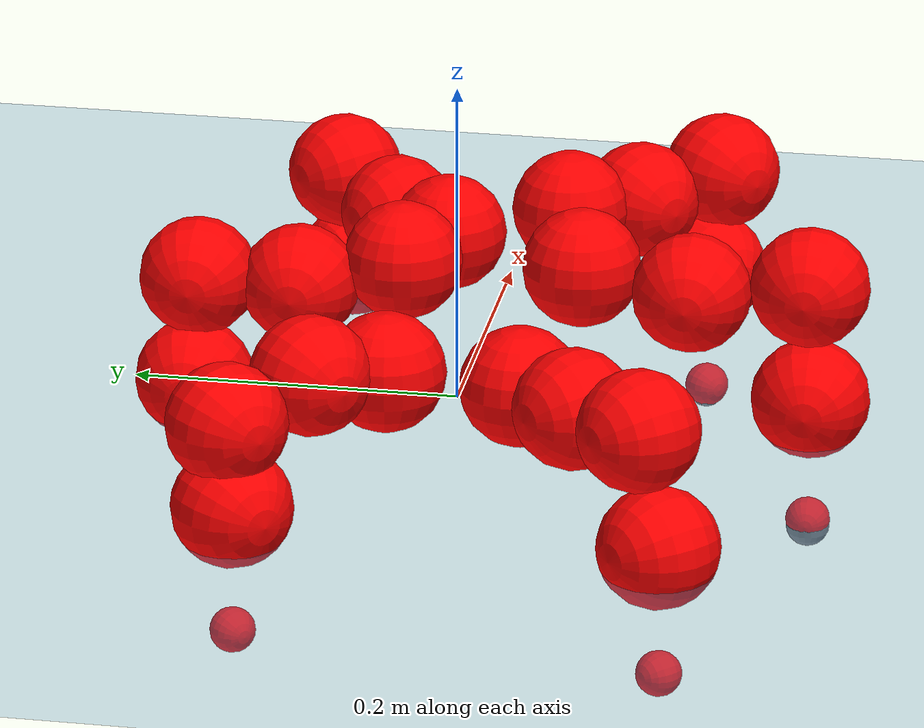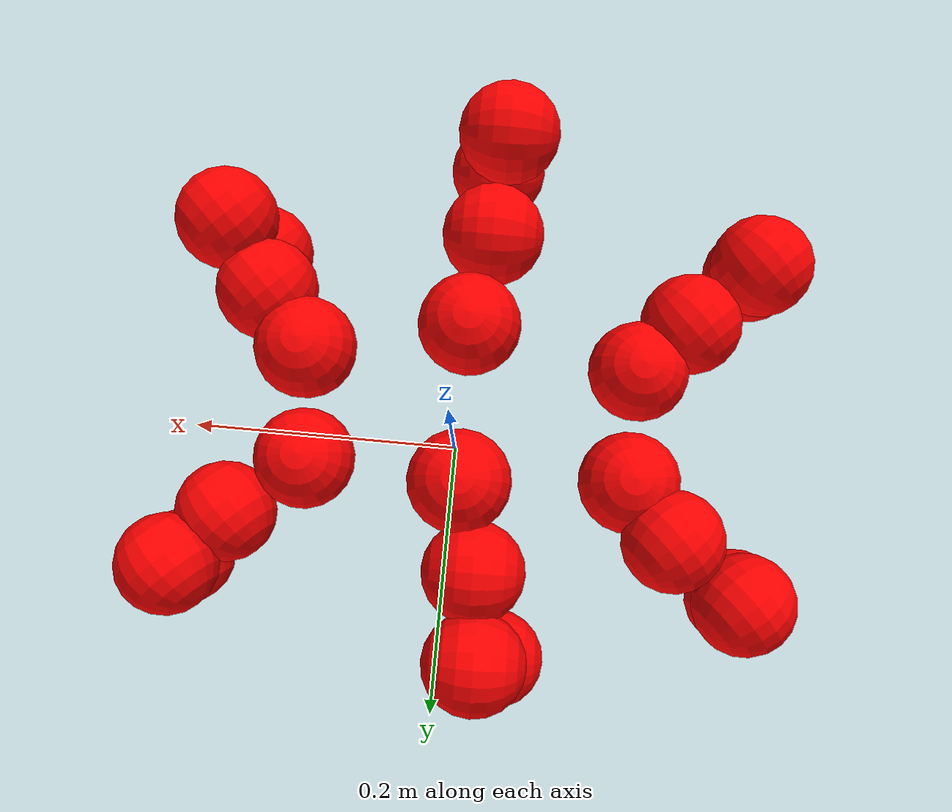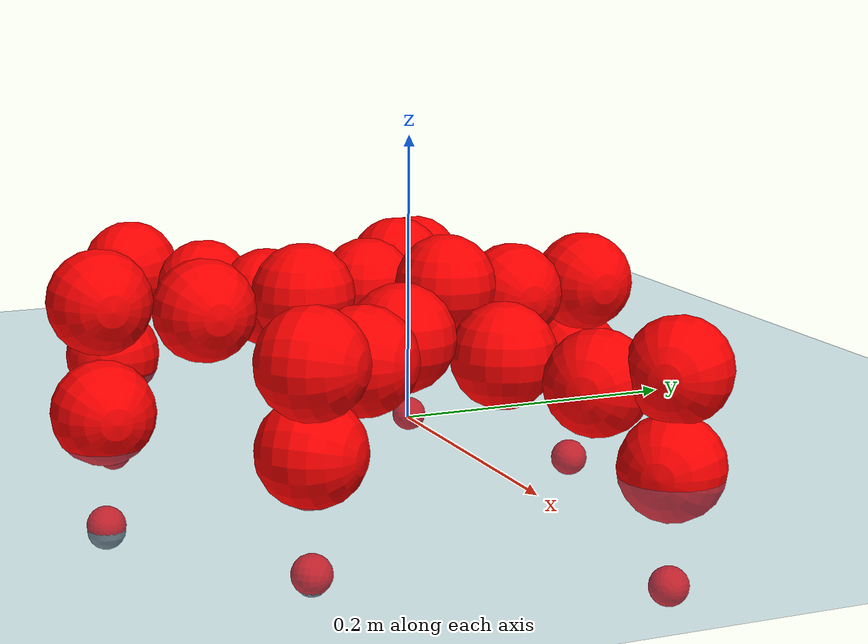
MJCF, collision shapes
<mujoco model="Golem">
  <compiler angle="radian" assetdir="assets" balanceinertia="true" inertiafromgeom="false"/>

  <option timestep="0.005" density="1.2" viscosity="2e-05"/>

  <size nkey="1"/>

  <visual>
    <quality shadowsize="8192"/>
    <map shadowclip="0.5"/>
  </visual>

  <default>
    <default class="/">
      <joint armature="0.01" damping="0.01" frictionloss="0.01"/>
      <geom contype="0" conaffinity="0" group="1" solref="-1000 -80"/>
      <site size="0.01 0.005 0.005" group="5"/>
      <general forcelimited="true" biastype="affine" gainprm="25" biasprm="0 -25 -0.5"/>
      <default class="visual">
        <geom type="mesh" group="2"/>
      </default>
      <default class="collision">
        <geom group="3"/>
      </default>
      <default class="foot">
        <geom size="0.01 0 0" condim="6" group="4" priority="1" solimp="0.015 1 0.01"/>
      </default>
      <default class="reward_collision_sphere">
        <geom group="5" rgba="1 0 0 1"/>
      </default>
    </default>
  </default>

  <asset>
    <texture type="skybox" colorspace="auto" name="//unnamed_texture_0" builtin="gradient" rgb1="0.95 0.95 0.95" rgb2="0.95 0.95 0.95" width="100" height="600"/>
    <texture type="2d" colorspace="auto" name="texplane" builtin="checker" rgb1="0.345 0.575 0.748" rgb2="0.345 0.575 0.748" markrgb="1 1 1" width="512" height="512"/>
    <material name="MatPlane" class="/" texture="texplane" texuniform="true" texrepeat="2 2" specular="0.9"/>
    <mesh name="body" class="/" file="body.stl" scale="0.001 0.001 0.001"/>
    <mesh name="coxa" class="/" file="coxa.stl" scale="0.001 0.001 0.001"/>
    <mesh name="femur" class="/" file="femur.stl" scale="0.001 0.001 0.001"/>
    <mesh name="tibia" class="/" file="tibia.stl" scale="0.001 0.001 0.001"/>
    <mesh name="tarsus" class="/" file="tarsus.stl" scale="0.001 0.001 0.001"/>
  </asset>

  <worldbody>
    <geom name="floor" class="/" size="100 100 0.125" type="plane" group="0" material="MatPlane"/>
    <light name="toplight_shadow" class="/" pos="0 0 5" dir="0.0990148 0.0990148 -0.990148" type="directional" ambient="0.04 0.04 0.04" diffuse="0.55 0.55 0.55" specular="0.12 0.12 0.12"/>
    <light name="toplight_fill" class="/" pos="0 0 5" dir="0.0990148 0.0990148 -0.990148" type="directional" castshadow="false" ambient="0.04 0.04 0.04" diffuse="0.3 0.3 0.3" specular="0.08 0.08 0.08"/>
    <body name="trunk" pos="-0.00775823 -0.0143924 -0.0102616" quat="1 -0.000578186 0.000111513 0.000171975">
      <inertial pos="0.0087094 -0.000836313 0.0159781" quat="0.999899 -0.00833223 0.00947036 0.00647144" mass="1.87636" diaginertia="0.00204608 0.000495909 0.0509976"/>
      <joint name="//unnamed_joint_0" type="free"/>
      <geom name="//unnamed_geom_1" class="/" pos="0 0 0.0886604" quat="1 0 0 0" type="mesh" rgba="0.9 0.9 0.9 1" mesh="body"/>
      <site name="imu" class="/" pos="0.113387 0.0544883 0.155515" size="0.00897767"/>
      <camera name="track" class="/" pos="0 -1.14224 0" quat="0.707107 0.707107 0 0" mode="trackcom"/>
      <camera name="ego_camera" class="/" pos="0.0957919 0 0.138532" quat="-0.5 -0.5 0.5 0.5"/>
      <body name="coxa_RR" pos="-0.135013 -0.060612 0.0776922" quat="0.381439 -0.00653132 -0.00146053 -0.92437">
        <inertial pos="0.00134349 0.0157127 -0.0152523" quat="0.998897 0.0390978 0.0249029 -0.00754563" mass="0.123151" diaginertia="0.00222279 0.000674705 0.0511925"/>
        <joint name="coxa_joint_RR" class="/" pos="0 0 0" axis="0.0077279 -0.00936563 -0.999926" range="-3.38354 3.15481" armature="0.00833487" damping="0.0111093" frictionloss="0.0108317"/>
        <geom name="//unnamed_geom_2" class="/" type="mesh" rgba="0.2 0.2 0.2 1" mesh="coxa"/>
        <geom name="//unnamed_geom_3" class="reward_collision_sphere" size="0.0359107" pos="-0.0221058 0 0"/>
        <body name="femur_RR" pos="0.0282123 0.00191653 0.00265265" quat="0.502143 -0.504023 0.494967 0.498819">
          <inertial pos="0.0123138 -0.000535005 0.00556268" quat="0.999992 0.00261357 0.00137845 0.0025501" mass="0.138452" diaginertia="0.00207159 0.000571477 0.0482438"/>
          <joint name="femur_joint_RR" class="/" pos="0 0 0" axis="-0.000904414 0.00903463 -0.999959" range="-2.91896 2.93911" armature="0.0147438" damping="0.0108879" frictionloss="0.00858451"/>
          <geom name="//unnamed_geom_4" class="/" type="mesh" rgba="0.9 0.9 0.9 1" mesh="femur"/>
          <geom name="//unnamed_geom_5" class="reward_collision_sphere" size="0.0359107"/>
          <body name="tibia_RR" pos="-0.00797841 -0.0636143 -0.00108907" quat="2.76342e-05 1 0.000104318 -9.95047e-05">
            <inertial pos="-0.00931426 -0.000462262 -0.00544525" quat="0.998813 -0.0320215 0.0188191 -0.0315156" mass="0.147288" diaginertia="0.00194372 0.000451813 0.0358538"/>
            <joint name="tibia_joint_RR" class="/" pos="0 0 0" axis="-0.00142746 0.0589729 0.998259" stiffness="0.042375" range="-2.96122 3.47817" armature="0.0113392" damping="0" frictionloss="0.00704869"/>
            <geom name="//unnamed_geom_6" class="/" type="mesh" rgba="0.2 0.2 0.2 1" mesh="tibia"/>
            <geom name="//unnamed_geom_7" class="reward_collision_sphere" size="0.0359107"/>
            <body name="tarsus_RR" pos="0.0680151 0.0143259 -0.00287418" quat="0.999999 -1.82106e-05 0.000400207 -0.00165376">
              <inertial pos="0.0316595 -0.0168758 0.0132863" quat="0.526545 0.500189 0.506775 0.464478" mass="0.124162" diaginertia="0.00199904 0.000414541 0.0419375"/>
              <joint name="tarsus_joint_RR" class="/" pos="0 0 0" axis="0.0430866 0.0213812 0.998843" stiffness="0.0202161" range="-3.4503 3.13535" armature="0.0057051" damping="0.0529549" frictionloss="0.00476205"/>
              <geom name="//unnamed_geom_8" class="/" type="mesh" rgba="0.9 0.9 0.9 1" mesh="tarsus"/>
              <geom name="foot_1" class="foot" size="0.00625751" pos="0.0825284 0 0" quat="0 -0.707107 0 0.707107"/>
              <geom name="//unnamed_geom_10" class="reward_collision_sphere" size="0.0359107"/>
              <geom name="//unnamed_geom_11" class="reward_collision_sphere" size="0.0134665" pos="0.0792126 0 0"/>
              <site name="foot_1" class="foot" pos="0.0825284 0 0" quat="0 -0.707107 0 0.707107" size="0.00897767"/>
            </body>
          </body>
        </body>
      </body>
      <body name="coxa_RM" pos="0.0028069 -0.0844331 0.103273" quat="0.707119 7.43854e-05 -1.90375e-05 -0.707094">
        <inertial pos="0.00387354 -0.00881207 -0.00670731" quat="0.999966 0.00601296 -0.000803395 0.0055894" mass="0.152195" diaginertia="0.0020089 0.000574996 0.0474077"/>
        <joint name="coxa_joint_RM" class="/" pos="0 0 0" axis="-0.0391721 -0.0130169 -0.999148" stiffness="0.0743971" range="-3.0335 3.2657" armature="0.00868646" damping="0.0238607" frictionloss="0.0163852"/>
        <geom name="//unnamed_geom_12" class="/" type="mesh" rgba="0.2 0.2 0.2 1" mesh="coxa"/>
        <geom name="//unnamed_geom_13" class="reward_collision_sphere" size="0.0359107" pos="-0.0221058 0 0"/>
        <body name="femur_RM" pos="0.0454475 -0.010678 -0.00725487" quat="0.501193 -0.498445 0.501025 0.499332">
          <inertial pos="-7.40864e-05 0.00974085 -0.0123056" quat="0.999595 0.028013 -0.00486893 0.00141385" mass="0.156046" diaginertia="0.00267292 0.000688556 0.0532201"/>
          <joint name="femur_joint_RM" class="/" pos="0 0 0" axis="0.0117092 -0.025725 -0.9996" range="-3.25646 3.32744" armature="0.0106873" damping="0.0652629" frictionloss="0.00979748"/>
          <geom name="//unnamed_geom_14" class="/" type="mesh" rgba="0.9 0.9 0.9 1" mesh="femur"/>
          <geom name="//unnamed_geom_15" class="reward_collision_sphere" size="0.0359107"/>
          <body name="tibia_RM" pos="-0.0106501 -0.0715214 -0.00477996" quat="-0.000321971 1 -0.000234943 5.21863e-05">
            <inertial pos="0.0157178 0.0147636 -0.00722712" quat="0.996829 -0.0426539 -0.0486354 -0.0463323" mass="0.142675" diaginertia="0.00221116 0.000607484 0.0607323"/>
            <joint name="tibia_joint_RM" class="/" pos="0 0 0" axis="-0.00115754 0.00337791 0.999994" range="-3.1839 2.96036" armature="0.00432665" damping="0" frictionloss="0.00444986"/>
            <geom name="//unnamed_geom_16" class="/" type="mesh" rgba="0.2 0.2 0.2 1" mesh="tibia"/>
            <geom name="//unnamed_geom_17" class="reward_collision_sphere" size="0.0359107"/>
            <body name="tarsus_RM" pos="0.0745765 0.000960222 -0.00592271" quat="0.999996 -0.00118751 -0.00258187 0.000726813">
              <inertial pos="0.047118 -0.00262596 0.00492335" quat="0.490263 0.512573 0.499438 0.497467" mass="0.124254" diaginertia="0.0016873 0.000554061 0.0437075"/>
              <joint name="tarsus_joint_RM" class="/" pos="0 0 0" axis="0.0171268 0.0230408 0.999588" stiffness="0.042458" range="-3.14799 3.17114" armature="0.0161878" damping="0.00579978" frictionloss="0.00740036"/>
              <geom name="//unnamed_geom_18" class="/" type="mesh" rgba="0.9 0.9 0.9 1" mesh="tarsus"/>
              <geom name="foot_2" class="foot" size="0.0132231" pos="0.0825284 0 0" quat="0 -0.707107 0 0.707107"/>
              <geom name="//unnamed_geom_20" class="reward_collision_sphere" size="0.0359107"/>
              <geom name="//unnamed_geom_21" class="reward_collision_sphere" size="0.0134665" pos="0.0792126 0 0"/>
              <site name="foot_2" class="foot" pos="0.0825284 0 0" quat="0 -0.707107 0 0.707107" size="0.00897767"/>
            </body>
          </body>
        </body>
      </body>
      <body name="coxa_RF" pos="0.130772 -0.0534427 0.0950146" quat="0.923792 -0.000100452 -0.000128106 -0.382894">
        <inertial pos="-0.0135306 0.00101305 0.000618134" quat="0.999812 -0.00244025 0.0114594 -0.0154527" mass="0.146456" diaginertia="0.00175918 0.000569297 0.0601127"/>
        <joint name="coxa_joint_RF" class="/" pos="0 0 0" axis="-0.0132375 0.0195018 -0.999722" stiffness="0.0302401" range="-2.92959 3.2118" armature="0.0134764" damping="0.00452717" frictionloss="0.0103442"/>
        <geom name="//unnamed_geom_22" class="/" type="mesh" rgba="0.2 0.2 0.2 1" mesh="coxa"/>
        <geom name="//unnamed_geom_23" class="reward_collision_sphere" size="0.0359107" pos="-0.0221058 0 0"/>
        <body name="femur_RF" pos="0.0287712 -0.00543919 -0.00431282" quat="0.500864 -0.499502 0.500196 0.499437">
          <inertial pos="0.00209184 0.00473178 0.0126652" quat="0.999497 -0.0304529 -0.00852936 0.00254967" mass="0.173373" diaginertia="0.00251437 0.000505276 0.0499999"/>
          <joint name="femur_joint_RF" class="/" pos="0 0 0" axis="-0.00503548 -0.00176658 -0.999986" stiffness="0.0546762" range="-3.41365 3.14216" armature="0.00422776" damping="0.0564611" frictionloss="0.00562027"/>
          <geom name="//unnamed_geom_24" class="/" type="mesh" rgba="0.9 0.9 0.9 1" mesh="femur"/>
          <geom name="//unnamed_geom_25" class="reward_collision_sphere" size="0.0359107"/>
          <body name="tibia_RF" pos="-0.00973889 -0.0551337 -0.00979677" quat="6.12357e-05 1 1.79844e-05 -5.39392e-05">
            <inertial pos="-0.00736536 -0.01088 -0.00144967" quat="0.999487 -0.00527926 0.0262397 -0.0176049" mass="0.144917" diaginertia="0.0017166 0.000682591 0.0428742"/>
            <joint name="tibia_joint_RF" class="/" pos="0 0 0" axis="-0.0134437 -0.0184593 0.999739" range="-3.20532 3.24443" armature="0.00568016" damping="0.0324377" frictionloss="0.0147259"/>
            <geom name="//unnamed_geom_26" class="/" type="mesh" rgba="0.2 0.2 0.2 1" mesh="tibia"/>
            <geom name="//unnamed_geom_27" class="reward_collision_sphere" size="0.0359107"/>
            <body name="tarsus_RF" pos="0.0596608 -0.014746 0.00723419" quat="0.999971 -0.00242073 -0.00422855 -0.00578535">
              <inertial pos="0.0450842 0.0154302 0.0054386" quat="0.521679 0.515137 0.427282 0.52907" mass="0.172657" diaginertia="0.00182547 0.000752971 0.0529002"/>
              <joint name="tarsus_joint_RF" class="/" pos="0 0 0" axis="0.0386718 0.0458911 0.998198" stiffness="0.0546037" range="-3.44409 3.2065" armature="0.00196008" damping="0.000892216" frictionloss="0.00860238"/>
              <geom name="//unnamed_geom_28" class="/" type="mesh" rgba="0.9 0.9 0.9 1" mesh="tarsus"/>
              <geom name="foot_3" class="foot" size="0.0110689" pos="0.0825284 0 0" quat="0 -0.707107 0 0.707107"/>
              <geom name="//unnamed_geom_30" class="reward_collision_sphere" size="0.0359107"/>
              <geom name="//unnamed_geom_31" class="reward_collision_sphere" size="0.0134665" pos="0.0792126 0 0"/>
              <site name="foot_3" class="foot" pos="0.0825284 0 0" quat="0 -0.707107 0 0.707107" size="0.00897767"/>
            </body>
          </body>
        </body>
      </body>
      <body name="coxa_LR" pos="-0.133463 0.0504388 0.080245" quat="0.381957 0.00392886 0.000500117 0.924171">
        <inertial pos="0.00655754 0.0159175 -0.00630676" quat="0.99798 0.00900699 0.0627972 -0.0032485" mass="0.176603" diaginertia="0.00245942 0.000590192 0.0599092"/>
        <joint name="coxa_joint_LR" class="/" pos="0 0 0" axis="0.0082687 0.0438526 -0.999004" stiffness="0.0572751" range="-2.96646 2.83199" armature="0.0155672" damping="0" frictionloss="0.0108853"/>
        <geom name="//unnamed_geom_32" class="/" type="mesh" rgba="0.2 0.2 0.2 1" mesh="coxa"/>
        <geom name="//unnamed_geom_33" class="reward_collision_sphere" size="0.0359107" pos="-0.0221058 0 0"/>
        <body name="femur_LR" pos="0.0272599 -0.00476974 0.00817149" quat="0.503569 -0.498313 0.50198 0.496104">
          <inertial pos="-0.00664109 -0.000279649 -0.00519809" quat="0.997089 -0.0283567 0.0591888 -0.0388044" mass="0.172009" diaginertia="0.00222166 0.000635092 0.0425409"/>
          <joint name="femur_joint_LR" class="/" pos="0 0 0" axis="0.0438184 -0.01365 0.998946" stiffness="0.0657213" range="-3.46783 3.39369" armature="0.00494607" damping="0.0385359" frictionloss="0.0105768"/>
          <geom name="//unnamed_geom_34" class="/" type="mesh" rgba="0.9 0.9 0.9 1" mesh="femur"/>
          <geom name="//unnamed_geom_35" class="reward_collision_sphere" size="0.0359107"/>
          <body name="tibia_LR" pos="0.0105553 -0.0647146 0.010873" quat="0.00014168 0.999989 0.000255264 -0.00477907">
            <inertial pos="0.00307848 0.0150637 -0.0108554" quat="0.998699 0.050362 -0.00609091 0.00511316" mass="0.141415" diaginertia="0.00183846 0.000532702 0.0503791"/>
            <joint name="tibia_joint_LR" class="/" pos="0 0 0" axis="1.1358e-05 0.00886473 -0.999961" range="-2.88348 2.94107" armature="0.0129994" damping="0.0767773" frictionloss="0.00424875"/>
            <geom name="//unnamed_geom_36" class="/" type="mesh" rgba="0.2 0.2 0.2 1" mesh="tibia"/>
            <geom name="//unnamed_geom_37" class="reward_collision_sphere" size="0.0359107"/>
            <body name="tarsus_LR" pos="0.0496666 0.000921379 -0.00672866" quat="0.999977 0.00258355 -0.00563658 -0.0029237">
              <inertial pos="0.042604 0.00414093 -0.000381669" quat="0.491504 0.505371 0.537836 0.462339" mass="0.135022" diaginertia="0.00179584 0.000545961 0.0418005"/>
              <joint name="tarsus_joint_LR" class="/" pos="0 0 0" axis="0.0114486 -0.00867384 -0.999897" stiffness="0.066706" range="-2.86188 3.12363" armature="0.00920981" damping="0.04498" frictionloss="0.015402"/>
              <geom name="//unnamed_geom_38" class="/" type="mesh" rgba="0.9 0.9 0.9 1" mesh="tarsus"/>
              <geom name="foot_4" class="foot" size="0.00876854" pos="0.0825284 0 0" quat="0.707107 0 -0.707107 0"/>
              <geom name="//unnamed_geom_40" class="reward_collision_sphere" size="0.0359107"/>
              <geom name="//unnamed_geom_41" class="reward_collision_sphere" size="0.0134665" pos="0.0792126 0 0"/>
              <site name="foot_4" class="foot" pos="0.0825284 0 0" quat="0.707107 0 -0.707107 0" size="0.00897767"/>
            </body>
          </body>
        </body>
      </body>
      <body name="coxa_LM" pos="0.00011623 0.0679748 0.101614" quat="0.706252 0.000481884 0.0046642 0.707945">
        <inertial pos="0.013561 0.00650131 0.0123026" quat="1 -0.000553523 -0.000322119 -0.000270858" mass="0.13291" diaginertia="0.00243473 0.000696253 0.0400251"/>
        <joint name="coxa_joint_LM" class="/" pos="0 0 0" axis="-0.0211728 -0.00353331 -0.99977" range="-3.15407 3.15644" armature="0.002722" damping="0.0825933" frictionloss="0.0138382"/>
        <geom name="//unnamed_geom_42" class="/" type="mesh" rgba="0.2 0.2 0.2 1" mesh="coxa"/>
        <geom name="//unnamed_geom_43" class="reward_collision_sphere" size="0.0359107" pos="-0.0221058 0 0"/>
        <body name="femur_LM" pos="0.0383127 0.0148192 -0.0126316" quat="0.499063 -0.500552 0.499335 0.501047">
          <inertial pos="-0.0125387 -0.00918132 -0.0143793" quat="0.999988 0.0018699 -0.00373499 0.00256568" mass="0.143559" diaginertia="0.00193821 0.000605706 0.0560432"/>
          <joint name="femur_joint_LM" class="/" pos="0 0 0" axis="-0.0115836 -0.032706 0.999398" stiffness="0.003783" range="-3.21257 3.38758" armature="0.00470918" damping="0.0123649" frictionloss="0.00396302"/>
          <geom name="//unnamed_geom_44" class="/" type="mesh" rgba="0.9 0.9 0.9 1" mesh="femur"/>
          <geom name="//unnamed_geom_45" class="reward_collision_sphere" size="0.0359107"/>
          <body name="tibia_LM" pos="-0.00310277 -0.0610112 0.00539796" quat="0.0010329 0.999999 -0.000256285 0.000453927">
            <inertial pos="0.010184 0.0155147 -0.0164468" quat="0.996572 -0.0260896 -0.054446 0.0565675" mass="0.150089" diaginertia="0.00206168 0.000619144 0.059694"/>
            <joint name="tibia_joint_LM" class="/" pos="0 0 0" axis="-0.0329853 -0.051538 -0.998126" stiffness="0.0809641" range="-3.11018 3.42613" armature="0.00533872" damping="0" frictionloss="0.00895593"/>
            <geom name="//unnamed_geom_46" class="/" type="mesh" rgba="0.2 0.2 0.2 1" mesh="tibia"/>
            <geom name="//unnamed_geom_47" class="reward_collision_sphere" size="0.0359107"/>
            <body name="tarsus_LM" pos="0.0603863 0.00102159 -0.0141898" quat="0.999993 0.00232498 0.00273374 -0.000633658">
              <inertial pos="0.0530182 0.00613434 0.0133365" quat="0.49423 0.462758 0.562847 0.474125" mass="0.133415" diaginertia="0.00250342 0.000778512 0.0643492"/>
              <joint name="tarsus_joint_LM" class="/" pos="0 0 0" axis="-0.061107 0.0322039 -0.997612" stiffness="0.0367248" range="-3.10143 3.42005" armature="0.0130681" damping="0" frictionloss="0.00860371"/>
              <geom name="//unnamed_geom_48" class="/" type="mesh" rgba="0.9 0.9 0.9 1" mesh="tarsus"/>
              <geom name="foot_5" class="foot" size="0.00873949" pos="0.0825284 0 0" quat="0.707107 0 -0.707107 0"/>
              <geom name="//unnamed_geom_50" class="reward_collision_sphere" size="0.0359107"/>
              <geom name="//unnamed_geom_51" class="reward_collision_sphere" size="0.0134665" pos="0.0792126 0 0"/>
              <site name="foot_5" class="foot" pos="0.0825284 0 0" quat="0.707107 0 -0.707107 0" size="0.00897767"/>
            </body>
          </body>
        </body>
      </body>
      <body name="coxa_LF" pos="0.126449 0.0531904 0.0758818" quat="0.924249 -0.00563642 -0.00466583 0.381719">
        <inertial pos="-0.00619987 0.00561635 -0.00750761" quat="0.99659 -0.00845 0.0131463 0.0810154" mass="0.110471" diaginertia="0.00228074 0.000467898 0.0579776"/>
        <joint name="coxa_joint_LF" class="/" pos="0 0 0" axis="-0.017431 -0.0291487 -0.999423" stiffness="0.0296019" range="-3.15142 3.15572" armature="0.00856144" damping="0.0493508" frictionloss="0.00689111"/>
        <geom name="//unnamed_geom_52" class="/" type="mesh" rgba="0.2 0.2 0.2 1" mesh="coxa"/>
        <geom name="//unnamed_geom_53" class="reward_collision_sphere" size="0.0359107" pos="-0.0221058 0 0"/>
        <body name="femur_LF" pos="0.0449041 -0.00754633 -0.0106852" quat="0.499654 -0.500611 0.499733 0.500002">
          <inertial pos="-0.0139643 0.00682144 -0.0153178" quat="0.999353 -0.0263978 -0.0217028 0.0111786" mass="0.180837" diaginertia="0.00260424 0.000592771 0.0548256"/>
          <joint name="femur_joint_LF" class="/" pos="0 0 0" axis="0.0507159 0.0125065 0.998635" range="-3.14011 2.8046" armature="0.00326033" damping="0.0517524" frictionloss="0.00806276"/>
          <geom name="//unnamed_geom_54" class="/" type="mesh" rgba="0.9 0.9 0.9 1" mesh="femur"/>
          <geom name="//unnamed_geom_55" class="reward_collision_sphere" size="0.0359107"/>
          <body name="tibia_LF" pos="-0.012154 -0.0521123 0.00448337" quat="-0.004488 0.999985 -0.00310837 -0.000784303">
            <inertial pos="0.00503841 -0.00567677 0.000614369" quat="0.999987 -0.00267285 0.00356288 -0.00259475" mass="0.14771" diaginertia="0.00224671 0.000601465 0.051929"/>
            <joint name="tibia_joint_LF" class="/" pos="0 0 0" axis="-0.0239474 0.059637 -0.997933" stiffness="0.000509126" range="-2.98559 2.91151" armature="0.0156818" damping="0.0178953" frictionloss="0.00599813"/>
            <geom name="//unnamed_geom_56" class="/" type="mesh" rgba="0.2 0.2 0.2 1" mesh="tibia"/>
            <geom name="//unnamed_geom_57" class="reward_collision_sphere" size="0.0359107"/>
            <body name="tarsus_LF" pos="0.0627816 -0.00137734 0.00616182" quat="0.999992 7.91954e-05 -0.00376291 0.00095513">
              <inertial pos="0.0571149 -0.00727279 0.00129288" quat="0.500884 0.499736 0.499202 0.500176" mass="0.178115" diaginertia="0.00256656 0.000724153 0.0535607"/>
              <joint name="tarsus_joint_LF" class="/" pos="0 0 0" axis="0.0426474 -0.0117947 -0.999021" stiffness="0.0116555" range="-2.84469 2.83529" armature="0.00836004" damping="0.0506234" frictionloss="0.0100029"/>
              <geom name="//unnamed_geom_58" class="/" type="mesh" rgba="0.9 0.9 0.9 1" mesh="tarsus"/>
              <geom name="foot_6" class="foot" size="0.00945159" pos="0.0825284 0 0" quat="0.707107 0 -0.707107 0"/>
              <geom name="//unnamed_geom_60" class="reward_collision_sphere" size="0.0359107"/>
              <geom name="//unnamed_geom_61" class="reward_collision_sphere" size="0.0134665" pos="0.0792126 0 0"/>
              <site name="foot_6" class="foot" pos="0.0825284 0 0" quat="0.707107 0 -0.707107 0" size="0.00897767"/>
            </body>
          </body>
        </body>
      </body>
    </body>
  </worldbody>

  <contact>
    <pair class="/" geom1="floor" geom2="foot_1" name="//unnamed_contact_0"/>
    <pair class="/" geom1="floor" geom2="foot_2" name="//unnamed_contact_1"/>
    <pair class="/" geom1="floor" geom2="foot_3" name="//unnamed_contact_2"/>
    <pair class="/" geom1="floor" geom2="foot_4" name="//unnamed_contact_3"/>
    <pair class="/" geom1="floor" geom2="foot_5" name="//unnamed_contact_4"/>
    <pair class="/" geom1="floor" geom2="foot_6" name="//unnamed_contact_5"/>
  </contact>

  <actuator>
    <general name="coxa_joint_RR" class="/" joint="coxa_joint_RR" forcerange="-4.55439 4.55439" gainprm="21.9835" biasprm="0 -21.9835 -0.456767"/>
    <general name="femur_joint_RR" class="/" joint="femur_joint_RR" forcerange="-8.82018 8.82018" gainprm="21.9835" biasprm="0 -21.9835 -0.456767"/>
    <general name="tibia_joint_RR" class="/" joint="tibia_joint_RR" forcerange="-10.4002 10.4002" gainprm="21.9835" biasprm="0 -21.9835 -0.456767"/>
    <general name="tarsus_joint_RR" class="/" joint="tarsus_joint_RR" forcerange="-9.20599 9.20599" gainprm="21.9835" biasprm="0 -21.9835 -0.456767"/>
    <general name="coxa_joint_RM" class="/" joint="coxa_joint_RM" forcerange="-6.46528 6.46528" gainprm="21.9835" biasprm="0 -21.9835 -0.456767"/>
    <general name="femur_joint_RM" class="/" joint="femur_joint_RM" forcerange="-6.05606 6.05606" gainprm="21.9835" biasprm="0 -21.9835 -0.456767"/>
    <general name="tibia_joint_RM" class="/" joint="tibia_joint_RM" forcerange="-10.6207 10.6207" gainprm="21.9835" biasprm="0 -21.9835 -0.456767"/>
    <general name="tarsus_joint_RM" class="/" joint="tarsus_joint_RM" forcerange="-8.14136 8.14136" gainprm="21.9835" biasprm="0 -21.9835 -0.456767"/>
    <general name="coxa_joint_RF" class="/" joint="coxa_joint_RF" forcerange="-7.09673 7.09673" gainprm="21.9835" biasprm="0 -21.9835 -0.456767"/>
    <general name="femur_joint_RF" class="/" joint="femur_joint_RF" forcerange="-2.48354 2.48354" gainprm="21.9835" biasprm="0 -21.9835 -0.456767"/>
    <general name="tibia_joint_RF" class="/" joint="tibia_joint_RF" forcerange="-4.29163 4.29163" gainprm="21.9835" biasprm="0 -21.9835 -0.456767"/>
    <general name="tarsus_joint_RF" class="/" joint="tarsus_joint_RF" forcerange="-2.50678 2.50678" gainprm="21.9835" biasprm="0 -21.9835 -0.456767"/>
    <general name="coxa_joint_LR" class="/" joint="coxa_joint_LR" forcerange="-9.81985 9.81985" gainprm="21.9835" biasprm="0 -21.9835 -0.456767"/>
    <general name="femur_joint_LR" class="/" joint="femur_joint_LR" forcerange="-4.69671 4.69671" gainprm="21.9835" biasprm="0 -21.9835 -0.456767"/>
    <general name="tibia_joint_LR" class="/" joint="tibia_joint_LR" forcerange="-4.05429 4.05429" gainprm="21.9835" biasprm="0 -21.9835 -0.456767"/>
    <general name="tarsus_joint_LR" class="/" joint="tarsus_joint_LR" forcerange="-6.65478 6.65478" gainprm="21.9835" biasprm="0 -21.9835 -0.456767"/>
    <general name="coxa_joint_LM" class="/" joint="coxa_joint_LM" forcerange="-4.36924 4.36924" gainprm="21.9835" biasprm="0 -21.9835 -0.456767"/>
    <general name="femur_joint_LM" class="/" joint="femur_joint_LM" forcerange="-6.36877 6.36877" gainprm="21.9835" biasprm="0 -21.9835 -0.456767"/>
    <general name="tibia_joint_LM" class="/" joint="tibia_joint_LM" forcerange="-10.2399 10.2399" gainprm="21.9835" biasprm="0 -21.9835 -0.456767"/>
    <general name="tarsus_joint_LM" class="/" joint="tarsus_joint_LM" forcerange="-9.39612 9.39612" gainprm="21.9835" biasprm="0 -21.9835 -0.456767"/>
    <general name="coxa_joint_LF" class="/" joint="coxa_joint_LF" forcerange="-4.78165 4.78165" gainprm="21.9835" biasprm="0 -21.9835 -0.456767"/>
    <general name="femur_joint_LF" class="/" joint="femur_joint_LF" forcerange="-9.9096 9.9096" gainprm="21.9835" biasprm="0 -21.9835 -0.456767"/>
    <general name="tibia_joint_LF" class="/" joint="tibia_joint_LF" forcerange="-6.28397 6.28397" gainprm="21.9835" biasprm="0 -21.9835 -0.456767"/>
    <general name="tarsus_joint_LF" class="/" joint="tarsus_joint_LF" forcerange="-6.38151 6.38151" gainprm="21.9835" biasprm="0 -21.9835 -0.456767"/>
  </actuator>

  <sensor>
    <gyro site="imu" name="imu_angular_velocity"/>
    <velocimeter site="imu" name="imu_linear_velocity"/>
    <framelinvel objtype="site" objname="foot_1" name="foot_1_global_linear_velocity"/>
    <framelinvel objtype="site" objname="foot_2" name="foot_2_global_linear_velocity"/>
    <framelinvel objtype="site" objname="foot_3" name="foot_3_global_linear_velocity"/>
    <framelinvel objtype="site" objname="foot_4" name="foot_4_global_linear_velocity"/>
    <framelinvel objtype="site" objname="foot_5" name="foot_5_global_linear_velocity"/>
    <framelinvel objtype="site" objname="foot_6" name="foot_6_global_linear_velocity"/>
  </sensor>

  <keyframe>
    <key name="home" qpos="0 0 0.1457 1 0 0 0 0 0 0 0 0 0 0 0 0 0 0 0 0 0 0 0 0 0 0 0 0 0 0 0"/>
  </keyframe>
</mujoco>
